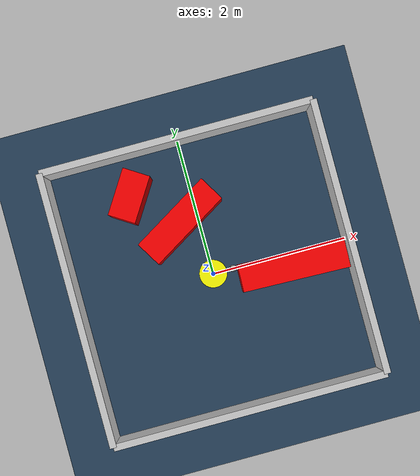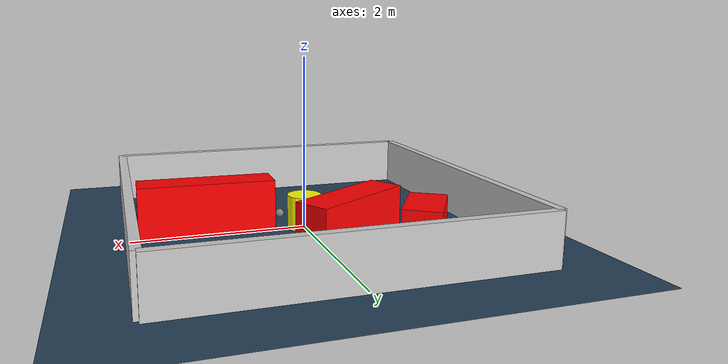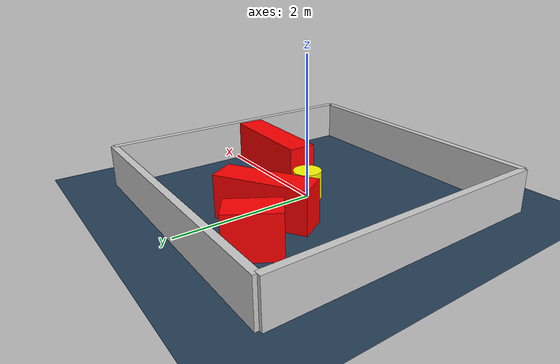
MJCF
<?xml version="1.0" ?>
<mujoco model="generated_environment">
  <option timestep="0.01" integrator="RK4" cone="elliptic"/>
  <default>
    <geom density="1"/>
  </default>
  <asset>
    <texture builtin="gradient" height="3072" rgb1="0.3 0.5 0.7" rgb2="0 0 0" type="skybox" width="512"/>
    <texture builtin="checker" height="300" mark="edge" markrgb="0.8 0.8 0.8" name="groundplane" rgb1="0.2 0.3 0.4" rgb2="0.1 0.2 0.3" type="2d" width="300"/>
    <material name="groundplane" reflectance="0.2" texrepeat="5 5" texture="groundplane" texuniform="true"/>
    <material name="robot" rgba="0.0 1.0 0.0 1"/>
  </asset>
  <worldbody>
    <light dir="0 0 -1" directional="true" pos="0 0 1.5"/>
    <geom condim="4" friction="1.0 0.005 0.001" material="groundplane" name="floor" size="0 0 0.05" type="plane"/>
    <body name="walls">
      <geom name="wall_1" condim="4" pos="-2.0 0.0 0.3" rgba="0.800000011920929 0.800000011920929 0.800000011920929 1.0" size="0.05 2.0 0.3" type="box"/>
      <geom name="wall_2" condim="4" pos="2.0 0.0 0.3" rgba="0.800000011920929 0.800000011920929 0.800000011920929 1.0" size="0.05 2.0 0.3" type="box"/>
      <geom name="wall_3" condim="4" pos="0.0 -2.0 0.3" rgba="0.800000011920929 0.800000011920929 0.800000011920929 1.0" size="2.0 0.05 0.3" type="box"/>
      <geom name="wall_4" condim="4" pos="0.0 2.0 0.3" rgba="0.800000011920929 0.800000011920929 0.800000011920929 1.0" size="2.0 0.05 0.3" type="box"/>
    </body>
    <body name="robot">
      <joint name="joint_x" type="slide" pos="0 0 0" axis="1 0 0"/>
      <joint name="joint_y" type="slide" pos="0 0 0" axis="0 1 0"/>
      <geom name="robot" type="sphere" pos="0.3 0.0 0.2" size="0.05" mass="5." friction="1.0 0.005 0.0001" condim="4" rgba="0.5 0.5 0.5 1.0"/>
      <site name="sensor_ball"/>
    </body>
    <body name="obstacle_movable_1">
      <geom name="obstacle_movable_1" condim="4" pos="0.0 0.0 0.2" euler="0 0 0.0" friction="1.0 0.005 0.001" rgba="1.0 1.0 0.0 1.0" size="0.2 0.2 0.0" type="cylinder" mass="0.1"/>
      <joint type="free"/>
    </body>
    <body name="obstacle_2_static">
      <geom name="obstacle_2_static" condim="4" pos="-0.2580043938437968 0.8327999057134667 0.3" euler="0 0 31.167596951667843" friction="1.0 0.005 0.001" rgba="1 0 0 1" size="0.6451490557596626 0.2 0.3" type="box"/>
    </body>
    <body name="obstacle_3_static">
      <geom name="obstacle_3_static" condim="4" pos="-0.856591960779513 1.3719081317614614 0.3" euler="0 0 57.38015255815655" friction="1.0 0.005 0.001" rgba="1 0 0 1" size="0.34848295373276006 0.2 0.3" type="box"/>
    </body>
    <body name="obstacle_4_static">
      <geom name="obstacle_4_static" condim="4" pos="1.1270406655218834 -0.19033535121415412 0.3" euler="0 0 178.30767710444286" friction="1.0 0.005 0.001" rgba="1 0 0 1" size="0.7740319441880136 0.2 0.3" type="box"/>
    </body>
  </worldbody>
  <actuator>
    <motor name="actuator_x" joint="joint_x" gear="1" ctrlrange="-1 1"/>
    <motor name="actuator_y" joint="joint_y" gear="1" ctrlrange="-1 1"/>
  </actuator>
</mujoco>
